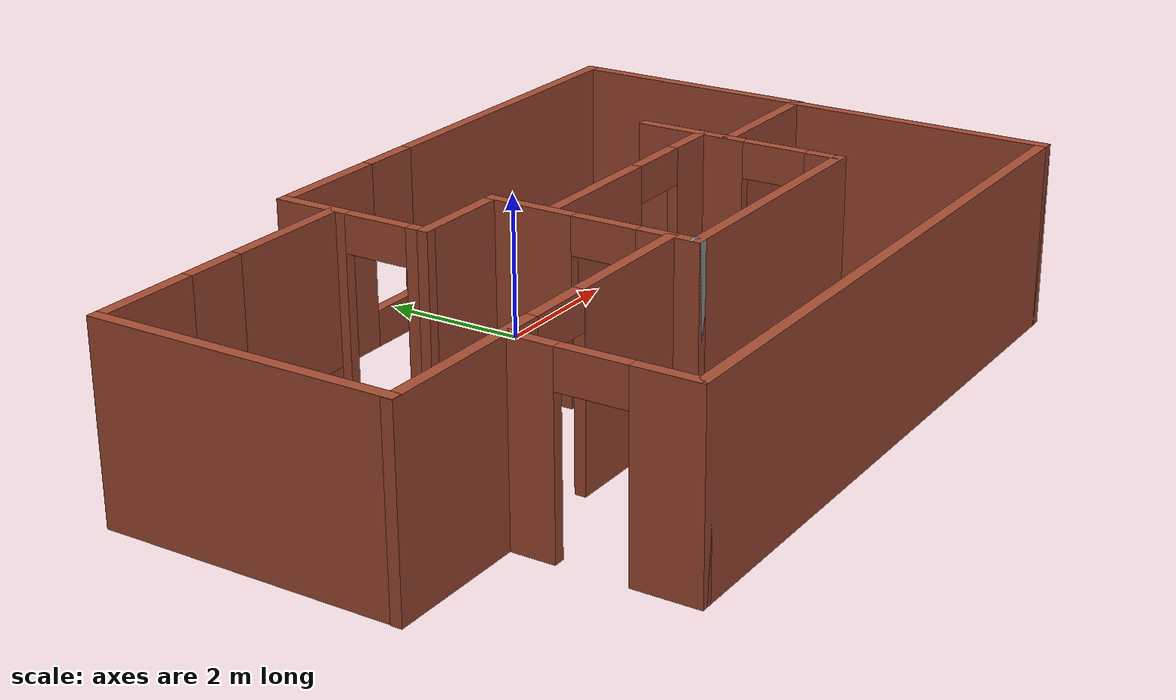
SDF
<?xml version='1.0'?>
<sdf version='1.6'>
  <model name='Rooms'>
    <pose frame=''>-1.31501 -2.085 0 0 -0 0</pose>
    <link name='Wall_10'>
      <collision name='Wall_10_Collision'>
        <geometry>
          <box>
            <size>1.5 0.15 2.5</size>
          </box>
        </geometry>
        <pose frame=''>0 0 1.25 0 -0 0</pose>
      </collision>
      <visual name='Wall_10_Visual'>
        <pose frame=''>0 0 1.25 0 -0 0</pose>
        <geometry>
          <box>
            <size>1.5 0.15 2.5</size>
          </box>
        </geometry>
        <material>
          <script>
            <uri>file://media/materials/scripts/gazebo.material</uri>
            <name>Gazebo/Bricks</name>
          </script>
          <ambient>1 1 1 1</ambient>
        </material>
        <meta>
          <layer>0</layer>
        </meta>
      </visual>
      <pose frame=''>-0.789991 1.385 0 0 -0 3.14159</pose>
    </link>
    <link name='Wall_11'>
      <pose frame=''>-1.46499 2.435 0 0 -0 1.5708</pose>
      <visual name='Wall_11_Visual_0'>
        <pose frame=''>-0.9675 0 1.25 0 -0 0</pose>
        <geometry>
          <box>
            <size>0.315 0.15 2.5</size>
          </box>
        </geometry>
        <material>
          <script>
            <uri>file://media/materials/scripts/gazebo.material</uri>
            <name>Gazebo/Bricks</name>
          </script>
          <ambient>1 1 1 1</ambient>
        </material>
        <meta>
          <layer>0</layer>
        </meta>
      </visual>
      <collision name='Wall_11_Collision_0'>
        <geometry>
          <box>
            <size>0.315 0.15 2.5</size>
          </box>
        </geometry>
        <pose frame=''>-0.9675 0 1.25 0 -0 0</pose>
      </collision>
      <visual name='Wall_11_Visual_1'>
        <pose frame=''>0.6075 0 1.25 0 -0 0</pose>
        <geometry>
          <box>
            <size>1.035 0.15 2.5</size>
          </box>
        </geometry>
        <material>
          <script>
            <uri>file://media/materials/scripts/gazebo.material</uri>
            <name>Gazebo/Bricks</name>
          </script>
          <ambient>1 1 1 1</ambient>
        </material>
        <meta>
          <layer>0</layer>
        </meta>
      </visual>
      <collision name='Wall_11_Collision_1'>
        <geometry>
          <box>
            <size>1.035 0.15 2.5</size>
          </box>
        </geometry>
        <pose frame=''>0.6075 0 1.25 0 -0 0</pose>
      </collision>
      <visual name='Wall_11_Visual_2'>
        <pose frame=''>-0.36 0 2.25 0 -0 0</pose>
        <geometry>
          <box>
            <size>0.9 0.15 0.5</size>
          </box>
        </geometry>
        <material>
          <script>
            <uri>file://media/materials/scripts/gazebo.material</uri>
            <name>Gazebo/Bricks</name>
          </script>
          <ambient>1 1 1 1</ambient>
        </material>
        <meta>
          <layer>0</layer>
        </meta>
      </visual>
      <collision name='Wall_11_Collision_2'>
        <geometry>
          <box>
            <size>0.9 0.15 0.5</size>
          </box>
        </geometry>
        <pose frame=''>-0.36 0 2.25 0 -0 0</pose>
      </collision>
    </link>
    <link name='Wall_12'>
      <pose frame=''>1.96001 3.485 0 0 -0 0</pose>
      <visual name='Wall_12_Visual_0'>
        <pose frame=''>-2.6675 0 1.25 0 -0 0</pose>
        <geometry>
          <box>
            <size>1.665 0.15 2.5</size>
          </box>
        </geometry>
        <material>
          <script>
            <uri>file://media/materials/scripts/gazebo.material</uri>
            <name>Gazebo/Bricks</name>
          </script>
          <ambient>1 1 1 1</ambient>
        </material>
        <meta>
          <layer>0</layer>
        </meta>
      </visual>
      <collision name='Wall_12_Collision_0'>
        <geometry>
          <box>
            <size>1.665 0.15 2.5</size>
          </box>
        </geometry>
        <pose frame=''>-2.6675 0 1.25 0 -0 0</pose>
      </collision>
      <visual name='Wall_12_Visual_1'>
        <pose frame=''>0.8325 0 0.25 0 -0 0</pose>
        <geometry>
          <box>
            <size>5.335 0.15 0.5</size>
          </box>
        </geometry>
        <material>
          <script>
            <uri>file://media/materials/scripts/gazebo.material</uri>
            <name>Gazebo/Bricks</name>
          </script>
          <ambient>1 1 1 1</ambient>
        </material>
        <meta>
          <layer>0</layer>
        </meta>
      </visual>
      <collision name='Wall_12_Collision_1'>
        <geometry>
          <box>
            <size>5.335 0.15 0.5</size>
          </box>
        </geometry>
        <pose frame=''>0.8325 0 0.25 0 -0 0</pose>
      </collision>
      <visual name='Wall_12_Visual_2'>
        <pose frame=''>1.2325 0 1.5 0 -0 0</pose>
        <geometry>
          <box>
            <size>4.535 0.15 2</size>
          </box>
        </geometry>
        <material>
          <script>
            <uri>file://media/materials/scripts/gazebo.material</uri>
            <name>Gazebo/Bricks</name>
          </script>
          <ambient>1 1 1 1</ambient>
        </material>
        <meta>
          <layer>0</layer>
        </meta>
      </visual>
      <collision name='Wall_12_Collision_2'>
        <geometry>
          <box>
            <size>4.535 0.15 2</size>
          </box>
        </geometry>
        <pose frame=''>1.2325 0 1.5 0 -0 0</pose>
      </collision>
      <visual name='Wall_12_Visual_3'>
        <pose frame=''>-1.435 0 1.9 0 -0 0</pose>
        <geometry>
          <box>
            <size>0.8 0.15 1.2</size>
          </box>
        </geometry>
        <material>
          <script>
            <uri>file://media/materials/scripts/gazebo.material</uri>
            <name>Gazebo/Bricks</name>
          </script>
          <ambient>1 1 1 1</ambient>
        </material>
        <meta>
          <layer>0</layer>
        </meta>
      </visual>
      <collision name='Wall_12_Collision_3'>
        <geometry>
          <box>
            <size>0.8 0.15 1.2</size>
          </box>
        </geometry>
        <pose frame=''>-1.435 0 1.9 0 -0 0</pose>
      </collision>
    </link>
    <link name='Wall_13'>
      <collision name='Wall_13_Collision'>
        <geometry>
          <box>
            <size>3.5 0.15 2.5</size>
          </box>
        </geometry>
        <pose frame=''>0 0 1.25 0 -0 0</pose>
      </collision>
      <visual name='Wall_13_Visual'>
        <pose frame=''>0 0 1.25 0 -0 0</pose>
        <geometry>
          <box>
            <size>3.5 0.15 2.5</size>
          </box>
        </geometry>
        <material>
          <script>
            <uri>file://media/materials/scripts/gazebo.material</uri>
            <name>Gazebo/Bricks</name>
          </script>
          <ambient>1 1 1 1</ambient>
        </material>
        <meta>
          <layer>0</layer>
        </meta>
      </visual>
      <pose frame=''>5.38501 1.81 0 0 0 -1.5708</pose>
    </link>
    <link name='Wall_14'>
      <collision name='Wall_14_Collision'>
        <geometry>
          <box>
            <size>2 0.15 2.5</size>
          </box>
        </geometry>
        <pose frame=''>0 0 1.25 0 -0 0</pose>
      </collision>
      <visual name='Wall_14_Visual'>
        <pose frame=''>0 0 1.25 0 -0 0</pose>
        <geometry>
          <box>
            <size>2 0.15 2.5</size>
          </box>
        </geometry>
        <material>
          <script>
            <uri>file://media/materials/scripts/gazebo.material</uri>
            <name>Gazebo/Bricks</name>
          </script>
          <ambient>1 1 1 1</ambient>
        </material>
        <meta>
          <layer>0</layer>
        </meta>
      </visual>
      <pose frame=''>4.46001 0.135 0 0 -0 3.14159</pose>
    </link>
    <link name='Wall_16'>
      <pose frame=''>1.69501 0.545 0 0 -0 0</pose>
      <visual name='Wall_16_Visual_0'>
        <pose frame=''>-0.8675 0 1.25 0 -0 0</pose>
        <geometry>
          <box>
            <size>2.015 0.15 2.5</size>
          </box>
        </geometry>
        <material>
          <script>
            <uri>file://media/materials/scripts/gazebo.material</uri>
            <name>Gazebo/Bricks</name>
          </script>
          <ambient>1 1 1 1</ambient>
        </material>
        <meta>
          <layer>0</layer>
        </meta>
      </visual>
      <collision name='Wall_16_Collision_0'>
        <geometry>
          <box>
            <size>2.015 0.15 2.5</size>
          </box>
        </geometry>
        <pose frame=''>-0.8675 0 1.25 0 -0 0</pose>
      </collision>
      <visual name='Wall_16_Visual_1'>
        <pose frame=''>1.4575 0 1.25 0 -0 0</pose>
        <geometry>
          <box>
            <size>0.835 0.15 2.5</size>
          </box>
        </geometry>
        <material>
          <script>
            <uri>file://media/materials/scripts/gazebo.material</uri>
            <name>Gazebo/Bricks</name>
          </script>
          <ambient>1 1 1 1</ambient>
        </material>
        <meta>
          <layer>0</layer>
        </meta>
      </visual>
      <collision name='Wall_16_Collision_1'>
        <geometry>
          <box>
            <size>0.835 0.15 2.5</size>
          </box>
        </geometry>
        <pose frame=''>1.4575 0 1.25 0 -0 0</pose>
      </collision>
      <visual name='Wall_16_Visual_2'>
        <pose frame=''>0.59 0 2.25 0 -0 0</pose>
        <geometry>
          <box>
            <size>0.9 0.15 0.5</size>
          </box>
        </geometry>
        <material>
          <script>
            <uri>file://media/materials/scripts/gazebo.material</uri>
            <name>Gazebo/Bricks</name>
          </script>
          <ambient>1 1 1 1</ambient>
        </material>
        <meta>
          <layer>0</layer>
        </meta>
      </visual>
      <collision name='Wall_16_Collision_2'>
        <geometry>
          <box>
            <size>0.9 0.15 0.5</size>
          </box>
        </geometry>
        <pose frame=''>0.59 0 2.25 0 -0 0</pose>
      </collision>
    </link>
    <link name='Wall_19'>
      <pose frame=''>-2.75499 -1.125 0 0 -0 3.14159</pose>
      <visual name='Wall_19_Visual_0'>
        <pose frame=''>-1.68751 0 1.25 0 -0 0</pose>
        <geometry>
          <box>
            <size>2.03502 0.15 2.5</size>
          </box>
        </geometry>
        <material>
          <script>
            <uri>file://media/materials/scripts/gazebo.material</uri>
            <name>Gazebo/Bricks</name>
          </script>
          <ambient>1 1 1 1</ambient>
        </material>
        <meta>
          <layer>0</layer>
        </meta>
      </visual>
      <collision name='Wall_19_Collision_0'>
        <geometry>
          <box>
            <size>2.03502 0.15 2.5</size>
          </box>
        </geometry>
        <pose frame=''>-1.68751 0 1.25 0 -0 0</pose>
      </collision>
      <visual name='Wall_19_Visual_1'>
        <pose frame=''>1.46751 0 1.25 0 -0 0</pose>
        <geometry>
          <box>
            <size>2.47502 0.15 2.5</size>
          </box>
        </geometry>
        <material>
          <script>
            <uri>file://media/materials/scripts/gazebo.material</uri>
            <name>Gazebo/Bricks</name>
          </script>
          <ambient>1 1 1 1</ambient>
        </material>
        <meta>
          <layer>0</layer>
        </meta>
      </visual>
      <collision name='Wall_19_Collision_1'>
        <geometry>
          <box>
            <size>2.47502 0.15 2.5</size>
          </box>
        </geometry>
        <pose frame=''>1.46751 0 1.25 0 -0 0</pose>
      </collision>
      <visual name='Wall_19_Visual_2'>
        <pose frame=''>-0.22 0 2.25 0 -0 0</pose>
        <geometry>
          <box>
            <size>0.9 0.15 0.5</size>
          </box>
        </geometry>
        <material>
          <script>
            <uri>file://media/materials/scripts/gazebo.material</uri>
            <name>Gazebo/Bricks</name>
          </script>
          <ambient>1 1 1 1</ambient>
        </material>
        <meta>
          <layer>0</layer>
        </meta>
      </visual>
      <collision name='Wall_19_Collision_2'>
        <geometry>
          <box>
            <size>0.9 0.15 0.5</size>
          </box>
        </geometry>
        <pose frame=''>-0.22 0 2.25 0 -0 0</pose>
      </collision>
    </link>
    <link name='Wall_2'>
      <pose frame=''>3.48501 -0.04 0 0 0 -1.5708</pose>
      <visual name='Wall_2_Visual_0'>
        <pose frame=''>-0.7125 0 1.25 0 -0 0</pose>
        <geometry>
          <box>
            <size>1.575 0.15 2.5</size>
          </box>
        </geometry>
        <material>
          <script>
            <uri>file://media/materials/scripts/gazebo.material</uri>
            <name>Gazebo/Bricks</name>
          </script>
          <ambient>1 1 1 1</ambient>
        </material>
        <meta>
          <layer>0</layer>
        </meta>
      </visual>
      <collision name='Wall_2_Collision_0'>
        <geometry>
          <box>
            <size>1.575 0.15 2.5</size>
          </box>
        </geometry>
        <pose frame=''>-0.7125 0 1.25 0 -0 0</pose>
      </collision>
      <visual name='Wall_2_Visual_1'>
        <pose frame=''>1.2375 0 1.25 0 -0 0</pose>
        <geometry>
          <box>
            <size>0.525 0.15 2.5</size>
          </box>
        </geometry>
        <material>
          <script>
            <uri>file://media/materials/scripts/gazebo.material</uri>
            <name>Gazebo/Bricks</name>
          </script>
          <ambient>1 1 1 1</ambient>
        </material>
        <meta>
          <layer>0</layer>
        </meta>
      </visual>
      <collision name='Wall_2_Collision_1'>
        <geometry>
          <box>
            <size>0.525 0.15 2.5</size>
          </box>
        </geometry>
        <pose frame=''>1.2375 0 1.25 0 -0 0</pose>
      </collision>
      <visual name='Wall_2_Visual_2'>
        <pose frame=''>0.525 0 2.25 0 -0 0</pose>
        <geometry>
          <box>
            <size>0.9 0.15 0.5</size>
          </box>
        </geometry>
        <material>
          <script>
            <uri>file://media/materials/scripts/gazebo.material</uri>
            <name>Gazebo/Bricks</name>
          </script>
          <ambient>1 1 1 1</ambient>
        </material>
        <meta>
          <layer>0</layer>
        </meta>
      </visual>
      <collision name='Wall_2_Collision_2'>
        <geometry>
          <box>
            <size>0.9 0.15 0.5</size>
          </box>
        </geometry>
        <pose frame=''>0.525 0 2.25 0 -0 0</pose>
      </collision>
    </link>
    <link name='Wall_20'>
      <collision name='Wall_20_Collision'>
        <geometry>
          <box>
            <size>4 0.15 2.5</size>
          </box>
        </geometry>
        <pose frame=''>0 0 1.25 0 -0 0</pose>
      </collision>
      <visual name='Wall_20_Visual'>
        <pose frame=''>0 0 1.25 0 -0 0</pose>
        <geometry>
          <box>
            <size>4 0.15 2.5</size>
          </box>
        </geometry>
        <material>
          <script>
            <uri>file://media/materials/scripts/gazebo.material</uri>
            <name>Gazebo/Bricks</name>
          </script>
          <ambient>1 1 1 1</ambient>
        </material>
        <meta>
          <layer>0</layer>
        </meta>
      </visual>
      <pose frame=''>-5.37499 0.81 0 0 -0 1.5708</pose>
    </link>
    <link name='Wall_22'>
      <pose frame=''>-3.44999 2.735 0 0 -0 0</pose>
      <visual name='Wall_22_Visual_0'>
        <pose frame=''>-1.2775 0 1.25 0 -0 0</pose>
        <geometry>
          <box>
            <size>1.445 0.15 2.5</size>
          </box>
        </geometry>
        <material>
          <script>
            <uri>file://media/materials/scripts/gazebo.material</uri>
            <name>Gazebo/Bricks</name>
          </script>
          <ambient>1 1 1 1</ambient>
        </material>
        <meta>
          <layer>0</layer>
        </meta>
      </visual>
      <collision name='Wall_22_Collision_0'>
        <geometry>
          <box>
            <size>1.445 0.15 2.5</size>
          </box>
        </geometry>
        <pose frame=''>-1.2775 0 1.25 0 -0 0</pose>
      </collision>
      <visual name='Wall_22_Visual_1'>
        <pose frame=''>0.7225 0 0.25 0 -0 0</pose>
        <geometry>
          <box>
            <size>2.555 0.15 0.5</size>
          </box>
        </geometry>
        <material>
          <script>
            <uri>file://media/materials/scripts/gazebo.material</uri>
            <name>Gazebo/Bricks</name>
          </script>
          <ambient>1 1 1 1</ambient>
        </material>
        <meta>
          <layer>0</layer>
        </meta>
      </visual>
      <collision name='Wall_22_Collision_1'>
        <geometry>
          <box>
            <size>2.555 0.15 0.5</size>
          </box>
        </geometry>
        <pose frame=''>0.7225 0 0.25 0 -0 0</pose>
      </collision>
      <visual name='Wall_22_Visual_2'>
        <pose frame=''>1.1225 0 1.5 0 -0 0</pose>
        <geometry>
          <box>
            <size>1.755 0.15 2</size>
          </box>
        </geometry>
        <material>
          <script>
            <uri>file://media/materials/scripts/gazebo.material</uri>
            <name>Gazebo/Bricks</name>
          </script>
          <ambient>1 1 1 1</ambient>
        </material>
        <meta>
          <layer>0</layer>
        </meta>
      </visual>
      <collision name='Wall_22_Collision_2'>
        <geometry>
          <box>
            <size>1.755 0.15 2</size>
          </box>
        </geometry>
        <pose frame=''>1.1225 0 1.5 0 -0 0</pose>
      </collision>
      <visual name='Wall_22_Visual_3'>
        <pose frame=''>-0.155 0 1.9 0 -0 0</pose>
        <geometry>
          <box>
            <size>0.8 0.15 1.2</size>
          </box>
        </geometry>
        <material>
          <script>
            <uri>file://media/materials/scripts/gazebo.material</uri>
            <name>Gazebo/Bricks</name>
          </script>
          <ambient>1 1 1 1</ambient>
        </material>
        <meta>
          <layer>0</layer>
        </meta>
      </visual>
      <collision name='Wall_22_Collision_3'>
        <geometry>
          <box>
            <size>0.8 0.15 1.2</size>
          </box>
        </geometry>
        <pose frame=''>-0.155 0 1.9 0 -0 0</pose>
      </collision>
    </link>
    <link name='Wall_24'>
      <pose frame=''>-3.49499 -2.31 0 0 0 -1.5708</pose>
      <visual name='Wall_24_Visual_0'>
        <pose frame=''>-0.8925 0 1.25 0 -0 0</pose>
        <geometry>
          <box>
            <size>0.715 0.15 2.5</size>
          </box>
        </geometry>
        <material>
          <script>
            <uri>file://media/materials/scripts/gazebo.material</uri>
            <name>Gazebo/Bricks</name>
          </script>
          <ambient>1 1 1 1</ambient>
        </material>
        <meta>
          <layer>0</layer>
        </meta>
      </visual>
      <collision name='Wall_24_Collision_0'>
        <geometry>
          <box>
            <size>0.715 0.15 2.5</size>
          </box>
        </geometry>
        <pose frame=''>-0.8925 0 1.25 0 -0 0</pose>
      </collision>
      <visual name='Wall_24_Visual_1'>
        <pose frame=''>0.8075 0 1.25 0 -0 0</pose>
        <geometry>
          <box>
            <size>0.885 0.15 2.5</size>
          </box>
        </geometry>
        <material>
          <script>
            <uri>file://media/materials/scripts/gazebo.material</uri>
            <name>Gazebo/Bricks</name>
          </script>
          <ambient>1 1 1 1</ambient>
        </material>
        <meta>
          <layer>0</layer>
        </meta>
      </visual>
      <collision name='Wall_24_Collision_1'>
        <geometry>
          <box>
            <size>0.885 0.15 2.5</size>
          </box>
        </geometry>
        <pose frame=''>0.8075 0 1.25 0 -0 0</pose>
      </collision>
      <visual name='Wall_24_Visual_2'>
        <pose frame=''>-0.085 0 2.25 0 -0 0</pose>
        <geometry>
          <box>
            <size>0.9 0.15 0.5</size>
          </box>
        </geometry>
        <material>
          <script>
            <uri>file://media/materials/scripts/gazebo.material</uri>
            <name>Gazebo/Bricks</name>
          </script>
          <ambient>1 1 1 1</ambient>
        </material>
        <meta>
          <layer>0</layer>
        </meta>
      </visual>
      <collision name='Wall_24_Collision_2'>
        <geometry>
          <box>
            <size>0.9 0.15 0.5</size>
          </box>
        </geometry>
        <pose frame=''>-0.085 0 2.25 0 -0 0</pose>
      </collision>
    </link>
    <link name='Wall_25'>
      <collision name='Wall_25_Collision'>
        <geometry>
          <box>
            <size>9 0.15 2.5</size>
          </box>
        </geometry>
        <pose frame=''>0 0 1.25 0 -0 0</pose>
      </collision>
      <visual name='Wall_25_Visual'>
        <pose frame=''>0 0 1.25 0 -0 0</pose>
        <geometry>
          <box>
            <size>9 0.15 2.5</size>
          </box>
        </geometry>
        <material>
          <script>
            <uri>file://media/materials/scripts/gazebo.material</uri>
            <name>Gazebo/Bricks</name>
          </script>
          <ambient>1 1 1 1</ambient>
        </material>
        <meta>
          <layer>0</layer>
        </meta>
      </visual>
      <pose frame=''>0.930009 -3.485 0 0 -0 0</pose>
    </link>
    <link name='Wall_26'>
      <collision name='Wall_26_Collision'>
        <geometry>
          <box>
            <size>3.75 0.15 2.5</size>
          </box>
        </geometry>
        <pose frame=''>0 0 1.25 0 -0 0</pose>
      </collision>
      <visual name='Wall_26_Visual'>
        <pose frame=''>0 0 1.25 0 -0 0</pose>
        <geometry>
          <box>
            <size>3.75 0.15 2.5</size>
          </box>
        </geometry>
        <material>
          <script>
            <uri>file://media/materials/scripts/gazebo.material</uri>
            <name>Gazebo/Bricks</name>
          </script>
          <ambient>1 1 1 1</ambient>
        </material>
        <meta>
          <layer>0</layer>
        </meta>
      </visual>
      <pose frame=''>5.35501 -1.685 0 0 -0 1.5708</pose>
    </link>
    <link name='Wall_3'>
      <collision name='Wall_3_Collision'>
        <geometry>
          <box>
            <size>3.75 0.15 2.5</size>
          </box>
        </geometry>
        <pose frame=''>0 0 1.25 0 -0 0</pose>
      </collision>
      <visual name='Wall_3_Visual'>
        <pose frame=''>0 0 1.25 0 -0 0</pose>
        <geometry>
          <box>
            <size>3.75 0.15 2.5</size>
          </box>
        </geometry>
        <material>
          <script>
            <uri>file://media/materials/scripts/gazebo.material</uri>
            <name>Gazebo/Bricks</name>
          </script>
          <ambient>1 1 1 1</ambient>
        </material>
        <meta>
          <layer>0</layer>
        </meta>
      </visual>
      <pose frame=''>1.68501 -1.465 0 0 -0 3.14159</pose>
    </link>
    <link name='Wall_4'>
      <collision name='Wall_4_Collision'>
        <geometry>
          <box>
            <size>0.15 0.15 2.5</size>
          </box>
        </geometry>
        <pose frame=''>0 0 1.25 0 -0 0</pose>
      </collision>
      <visual name='Wall_4_Visual'>
        <pose frame=''>0 0 1.25 0 -0 0</pose>
        <geometry>
          <box>
            <size>0.15 0.15 2.5</size>
          </box>
        </geometry>
        <material>
          <script>
            <uri>file://media/materials/scripts/gazebo.material</uri>
            <name>Gazebo/Grey</name>
          </script>
          <ambient>1 1 1 1</ambient>
        </material>
        <meta>
          <layer>0</layer>
        </meta>
      </visual>
      <pose frame=''>-0.114991 -1.465 0 0 -0 0</pose>
    </link>
    <link name='Wall_5'>
      <collision name='Wall_5_Collision'>
        <geometry>
          <box>
            <size>0.15 0.15 2.5</size>
          </box>
        </geometry>
        <pose frame=''>0 0 1.25 0 -0 0</pose>
      </collision>
      <visual name='Wall_5_Visual'>
        <pose frame=''>0 0 1.25 0 -0 0</pose>
        <geometry>
          <box>
            <size>0.15 0.15 2.5</size>
          </box>
        </geometry>
        <material>
          <script>
            <uri>file://media/materials/scripts/gazebo.material</uri>
            <name>Gazebo/Grey</name>
          </script>
          <ambient>1 1 1 1</ambient>
        </material>
        <meta>
          <layer>0</layer>
        </meta>
      </visual>
      <pose frame=''>-0.114991 -1.465 0 0 -0 0</pose>
    </link>
    <link name='Wall_6'>
      <collision name='Wall_6_Collision'>
        <geometry>
          <box>
            <size>0.15 0.15 2.5</size>
          </box>
        </geometry>
        <pose frame=''>0 0 1.25 0 -0 0</pose>
      </collision>
      <visual name='Wall_6_Visual'>
        <pose frame=''>0 0 1.25 0 -0 0</pose>
        <geometry>
          <box>
            <size>0.15 0.15 2.5</size>
          </box>
        </geometry>
        <material>
          <script>
            <uri>file://media/materials/scripts/gazebo.material</uri>
            <name>Gazebo/Grey</name>
          </script>
          <ambient>1 1 1 1</ambient>
        </material>
        <meta>
          <layer>0</layer>
        </meta>
      </visual>
      <pose frame=''>-0.114991 -1.465 0 0 -0 0</pose>
    </link>
    <link name='Wall_8'>
      <pose frame=''>-0.114991 -0.04 0 0 0 -1.5708</pose>
      <visual name='Wall_8_Visual_0'>
        <pose frame=''>-0.8775 0 1.25 0 -0 0</pose>
        <geometry>
          <box>
            <size>1.245 0.15 2.5</size>
          </box>
        </geometry>
        <material>
          <script>
            <uri>file://media/materials/scripts/gazebo.material</uri>
            <name>Gazebo/Bricks</name>
          </script>
          <ambient>1 1 1 1</ambient>
        </material>
        <meta>
          <layer>0</layer>
        </meta>
      </visual>
      <collision name='Wall_8_Collision_0'>
        <geometry>
          <box>
            <size>1.245 0.15 2.5</size>
          </box>
        </geometry>
        <pose frame=''>-0.8775 0 1.25 0 -0 0</pose>
      </collision>
      <visual name='Wall_8_Visual_1'>
        <pose frame=''>1.0725 0 1.25 0 -0 0</pose>
        <geometry>
          <box>
            <size>0.855 0.15 2.5</size>
          </box>
        </geometry>
        <material>
          <script>
            <uri>file://media/materials/scripts/gazebo.material</uri>
            <name>Gazebo/Bricks</name>
          </script>
          <ambient>1 1 1 1</ambient>
        </material>
        <meta>
          <layer>0</layer>
        </meta>
      </visual>
      <collision name='Wall_8_Collision_1'>
        <geometry>
          <box>
            <size>0.855 0.15 2.5</size>
          </box>
        </geometry>
        <pose frame=''>1.0725 0 1.25 0 -0 0</pose>
      </collision>
      <visual name='Wall_8_Visual_2'>
        <pose frame=''>0.195 0 2.25 0 -0 0</pose>
        <geometry>
          <box>
            <size>0.9 0.15 0.5</size>
          </box>
        </geometry>
        <material>
          <script>
            <uri>file://media/materials/scripts/gazebo.material</uri>
            <name>Gazebo/Bricks</name>
          </script>
          <ambient>1 1 1 1</ambient>
        </material>
        <meta>
          <layer>0</layer>
        </meta>
      </visual>
      <collision name='Wall_8_Collision_2'>
        <geometry>
          <box>
            <size>0.9 0.15 0.5</size>
          </box>
        </geometry>
        <pose frame=''>0.195 0 2.25 0 -0 0</pose>
      </collision>
    </link>
    <static>1</static>
  </model>
</sdf>
